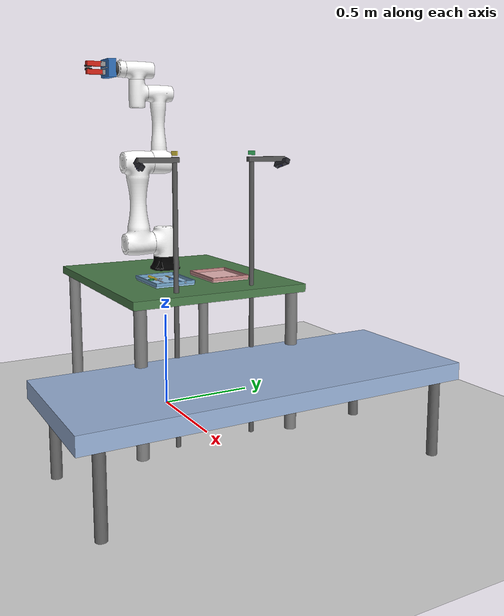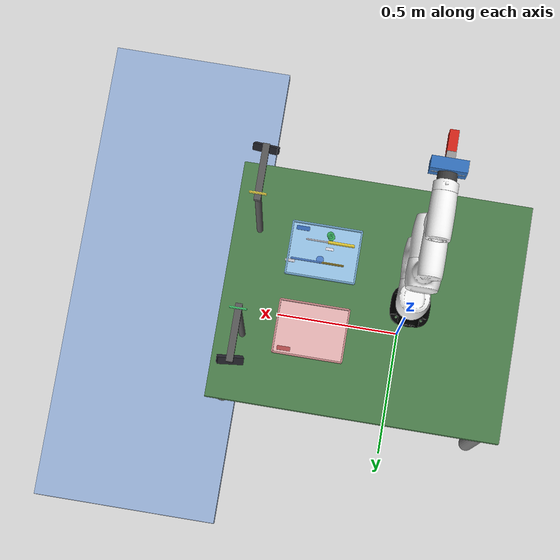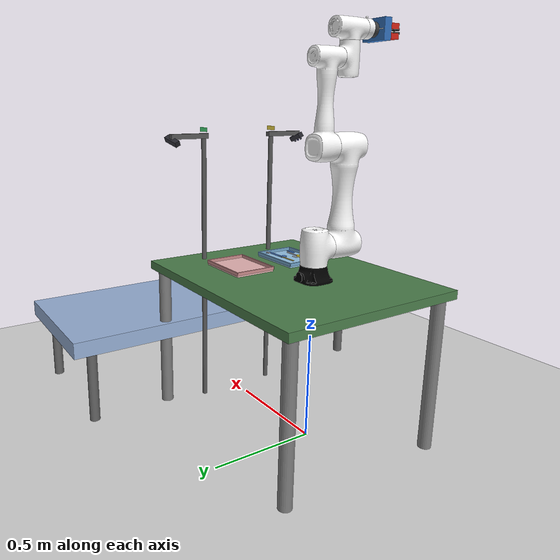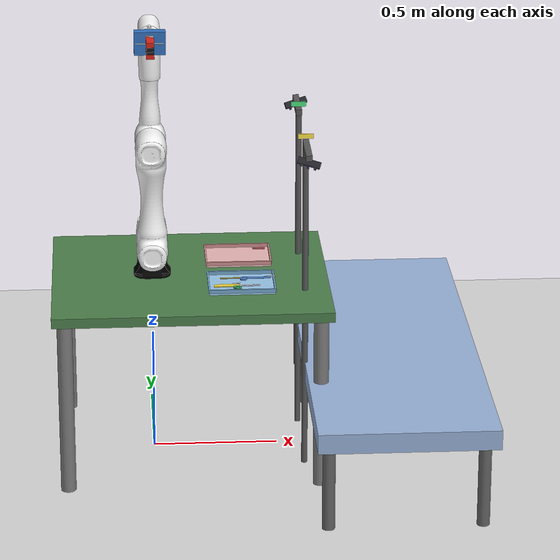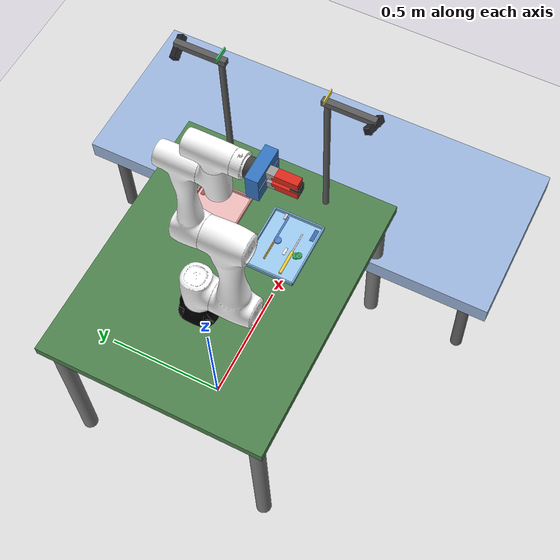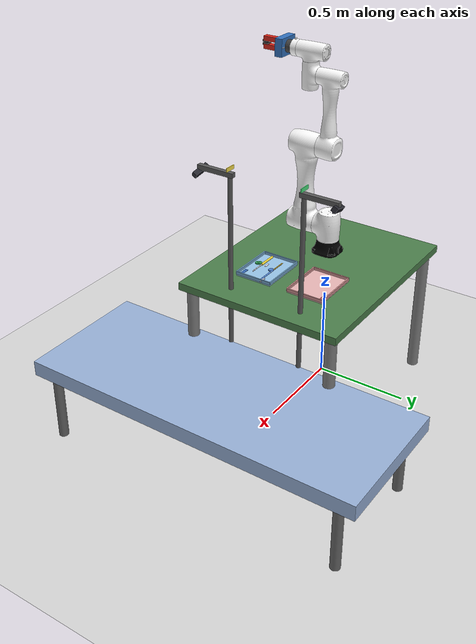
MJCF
<mujoco model="surgbot_v2">
  <compiler angle="radian" meshdir="../cr5/meshes"/>

  <option timestep="0.002" gravity="0 0 -9.81" integrator="implicit"/>

  <default>
    <joint damping="5"/>
    <geom condim="4" friction="1 0.5 0.005"/>
    <default class="visual">
      <geom contype="0" conaffinity="0" group="1"/>
    </default>
  </default>

  <asset>
    <!-- CR5 meshes -->
    <mesh name="base_link" file="base_link.stl"/>
    <mesh name="Link1" file="Link1.stl"/>
    <mesh name="Link2" file="Link2.stl"/>
    <mesh name="Link3" file="Link3.stl"/>
    <mesh name="Link4" file="Link4.stl"/>
    <mesh name="Link5" file="Link5.stl"/>
    <mesh name="Link6" file="Link6.stl"/>
    <!-- Materials -->
    <material name="steel" rgba="0.75 0.75 0.78 1"/>
    <material name="dark_metal" rgba="0.2 0.2 0.2 1"/>
    <material name="table_green" rgba="0.3 0.5 0.3 1"/>
    <material name="inst_tray_blue" rgba="0.6 0.78 0.92 1"/>
    <material name="inst_tray_edge" rgba="0.45 0.65 0.8 1"/>
    <material name="bed_tray_pink" rgba="0.92 0.72 0.72 1"/>
    <material name="bed_tray_edge" rgba="0.8 0.55 0.55 1"/>
    <material name="gripper_blue" rgba="0.2 0.45 0.75 1"/>
    <material name="rubber_black" rgba="0.1 0.1 0.1 1"/>
    <material name="camera_dark" rgba="0.15 0.15 0.18 1"/>
    <material name="lens_glass" rgba="0.05 0.05 0.1 1"/>
    <material name="bed_blue" rgba="0.6 0.7 0.85 1"/>
    <texture name="grid" type="2d" builtin="checker" width="512" height="512"
             rgb1="0.9 0.9 0.9" rgb2="0.8 0.8 0.8"/>
    <material name="floor_mat" texture="grid" texrepeat="10 10"/>
  </asset>

  <worldbody>
    <!-- Lighting -->
    <light name="top_light" pos="0 0 2.5" dir="0 0 -1" diffuse="0.8 0.8 0.8"
           specular="0.3 0.3 0.3" directional="true"/>
    <light name="front_light" pos="1 -1 2" dir="-0.5 0.5 -1" diffuse="0.4 0.4 0.4"/>

    <!-- Ground plane -->
    <geom name="floor" type="plane" size="3 3 0.01" material="floor_mat"
          conaffinity="1" condim="3"/>

    <!-- Operating table (surface at z=0.75m)         -->
    <!-- Extended forward (+X) for tray workspace     -->
    <body name="table" pos="0.15 0 0.73">
      <geom name="table_top" type="box" size="0.55 0.45 0.02"
            material="table_green" mass="25"/>
      <geom name="table_leg1" type="cylinder" size="0.03 0.355"
            pos="-0.5 -0.4 -0.375" rgba="0.5 0.5 0.5 1"/>
      <geom name="table_leg2" type="cylinder" size="0.03 0.355"
            pos="0.5 -0.4 -0.375" rgba="0.5 0.5 0.5 1"/>
      <geom name="table_leg3" type="cylinder" size="0.03 0.355"
            pos="-0.5 0.4 -0.375" rgba="0.5 0.5 0.5 1"/>
      <geom name="table_leg4" type="cylinder" size="0.03 0.355"
            pos="0.5 0.4 -0.375" rgba="0.5 0.5 0.5 1"/>
    </body>

    <!-- Hospital Bed (simplified, far +X side)       -->
    <!-- Surgeon side, beyond the trays               -->
    <body name="hospital_bed" pos="0.95 0 0.4">
      <geom name="bed_surface" type="box" size="0.35 0.9 0.04"
            material="bed_blue" mass="30"/>
      <geom name="bed_leg1" type="cylinder" size="0.025 0.18"
            pos="-0.3 -0.8 -0.22" rgba="0.4 0.4 0.4 1"/>
      <geom name="bed_leg2" type="cylinder" size="0.025 0.18"
            pos="0.3 -0.8 -0.22" rgba="0.4 0.4 0.4 1"/>
      <geom name="bed_leg3" type="cylinder" size="0.025 0.18"
            pos="-0.3 0.8 -0.22" rgba="0.4 0.4 0.4 1"/>
      <geom name="bed_leg4" type="cylinder" size="0.025 0.18"
            pos="0.3 0.8 -0.22" rgba="0.4 0.4 0.4 1"/>
    </body>

    <!-- CR5 Robot Arm (base on table center, z=0.76) -->
    <body name="cr5_base" pos="0 0 0.76">
      <geom type="mesh" rgba="0 0 0 1" mesh="base_link"/>

      <body name="Link1" pos="0 0 0.147">
        <inertial pos="-8.7268e-07 -0.0032576 -0.0076748"
                  quat="0.615786 0.347596 -0.347595 0.615761"
                  mass="1.6123"
                  diaginertia="0.00354972 0.0029122 0.00255298"/>
        <joint name="joint1" pos="0 0 0" axis="0 0 1"
               range="-3.14 3.14" damping="10"/>
        <geom type="mesh" rgba="1 1 1 1" mesh="Link1"/>

        <body name="Link2" quat="0.499998 0.5 0.5 -0.500002">
          <inertial pos="-0.21351 -1.3842e-06 0.14252"
                    quat="8.38738e-05 0.707093 5.56955e-05 0.707121"
                    mass="5.5186"
                    diaginertia="0.028294 0.027553 0.0085919"/>
          <joint name="joint2" pos="0 0 0" axis="0 0 1"
                 range="-3.14 3.14" damping="10"/>
          <geom type="mesh" rgba="1 1 1 1" mesh="Link2"/>

          <body name="Link3" pos="-0.427 0 0">
            <inertial pos="-0.15231 -1.4079e-07 0.022693"
                      quat="0 0.714013 0 0.700132"
                      mass="2.8536"
                      diaginertia="0.00955763 0.0092967 0.00325837"/>
            <joint name="joint3" pos="0 0 0" axis="0 0 1"
                   range="-2.86 2.86" damping="8"/>
            <geom type="mesh" rgba="1 1 1 1" mesh="Link3"/>

            <body name="Link4" pos="-0.357 0 0.141"
                  quat="0.707105 0 0 -0.707108">
              <inertial pos="-3.2386e-07 -0.002077 -0.0015548"
                        quat="0.653428 0.270173 -0.270153 0.653495"
                        mass="0.67058"
                        diaginertia="0.000764755 0.00066939 0.000543135"/>
              <joint name="joint4" pos="0 0 0" axis="0 0 1"
                     range="-3.14 3.14" damping="5"/>
              <geom type="mesh" rgba="1 1 1 1" mesh="Link4"/>

              <body name="Link5" pos="0 -0.116 0"
                    quat="0.707105 0.707108 0 0">
                <inertial pos="-3.7738e-07 -0.0045777 -0.0012971"
                          quat="0.27195 0.652753 -0.652695 0.271929"
                          mass="0.7269"
                          diaginertia="0.000832194 0.00073069 0.000593666"/>
                <joint name="joint5" pos="0 0 0" axis="0 0 1"
                       range="-3.14 3.14" damping="5"/>
                <geom type="mesh" rgba="1 1 1 1" mesh="Link5"/>

                <body name="Link6" pos="0 0.105 0"
                      quat="0.707105 -0.707108 0 0">
                  <inertial pos="5.0777e-11 9.3774e-05 -0.019285"
                            quat="-0.000970713 0.707106 -0.000970713 0.707106"
                            mass="0.15789"
                            diaginertia="0.00012951 7.91676e-05 7.8045e-05"/>
                  <joint name="joint6" pos="0 0 0" axis="0 0 1"
                         range="-6.28 6.28" damping="3"/>
                  <geom type="mesh" rgba="1 1 1 1" mesh="Link6"/>
                  <site name="ee_site" pos="0 0 0" size="0.01" rgba="1 0 0 0.5"/>

                  <!-- ======== DH-3 Gripper (mounted on Link6) ======== -->
                  <geom name="gripper_flange" type="cylinder" size="0.032 0.015"
                        pos="0 0 0.015" rgba="0.25 0.25 0.25 1"/>

                  <body name="gripper_base" pos="0 0 0.045">
                    <geom name="gripper_housing" type="box" size="0.06 0.045 0.02"
                          mass="0.3" material="gripper_blue"/>
                    <geom name="gripper_stripe" type="box" size="0.055 0.002 0.021"
                          pos="0 0 0" rgba="0.9 0.9 0.9 1"
                          contype="0" conaffinity="0"/>

                    <body name="gripper_left_finger" pos="0 0.02 0.02">
                      <joint name="gripper_left" type="slide" axis="0 1 0"
                             range="0 0.03" damping="2"/>
                      <geom name="gripper_left_bracket" type="box"
                            size="0.015 0.012 0.015" pos="0 0 0.01"
                            mass="0.02" rgba="0.6 0.6 0.6 1"/>
                      <geom name="gripper_left_body" type="box"
                            size="0.015 0.012 0.04" pos="0 0 0.055"
                            mass="0.05" rgba="0.85 0.15 0.1 1"/>
                      <body name="gripper_left_pad" pos="0 -0.012 0.085">
                        <geom name="left_pad" type="box"
                              size="0.014 0.005 0.015" mass="0.01"
                              material="rubber_black"
                              friction="2 0.5 0.005" condim="4"/>
                        <site name="left_pad_site" pos="0 0 0" size="0.005"/>
                      </body>
                    </body>

                    <body name="gripper_right_finger" pos="0 -0.02 0.02">
                      <joint name="gripper_right" type="slide" axis="0 -1 0"
                             range="0 0.03" damping="2"/>
                      <geom name="gripper_right_bracket" type="box"
                            size="0.015 0.012 0.015" pos="0 0 0.01"
                            mass="0.02" rgba="0.6 0.6 0.6 1"/>
                      <geom name="gripper_right_body" type="box"
                            size="0.015 0.012 0.04" pos="0 0 0.055"
                            mass="0.05" rgba="0.85 0.15 0.1 1"/>
                      <body name="gripper_right_pad" pos="0 0.012 0.085">
                        <geom name="right_pad" type="box"
                              size="0.014 0.005 0.015" mass="0.01"
                              material="rubber_black"
                              friction="2 0.5 0.005" condim="4"/>
                        <site name="right_pad_site" pos="0 0 0" size="0.005"/>
                      </body>
                    </body>

                    <site name="gripper_tcp" pos="0 0 0.1"
                          size="0.002" rgba="1 1 0 0.3"/>
                  </body>
                  <!-- ======== End Gripper ======== -->

                </body>
              </body>
            </body>
          </body>
        </body>
      </body>
    </body>
    <!-- End CR5 Robot Arm -->

    <!-- Camera 1: Watches Instrument Tray (front-left)-->
    <!-- Elevated stand behind inst tray, angled down  -->
    <body name="camera_stand_1" pos="0.6 -0.2 0">
      <geom name="cam1_pole" type="cylinder" size="0.012 0.68"
            pos="0 0 0.68" rgba="0.35 0.35 0.35 1"/>
      <geom name="cam1_bracket" type="box" size="0.012 0.1 0.012"
            pos="0 -0.08 1.36" rgba="0.35 0.35 0.35 1"/>
      <body name="camera_head_1" pos="0 -0.17 1.34" euler="1.1 0 -0.3">
        <geom name="cam1_housing" type="box" size="0.045 0.0125 0.0125"
              material="camera_dark"/>
        <geom name="cam1_lens_L" type="cylinder" size="0.005 0.004"
              pos="-0.028 -0.017 0" euler="1.5708 0 0"
              material="lens_glass" contype="0" conaffinity="0"/>
        <geom name="cam1_lens_R" type="cylinder" size="0.005 0.004"
              pos="0.028 -0.017 0" euler="1.5708 0 0"
              material="lens_glass" contype="0" conaffinity="0"/>
        <geom name="cam1_lens_C" type="cylinder" size="0.004 0.004"
              pos="0 -0.017 0" euler="1.5708 0 0"
              rgba="0.1 0.1 0.3 1" contype="0" conaffinity="0"/>
        <site name="camera1_site" pos="0 -0.02 0" size="0.003"/>
      </body>
      <geom name="cam1_label" type="box" size="0.03 0.002 0.01"
            pos="0 0 1.39" rgba="1 0.9 0.3 1"
            contype="0" conaffinity="0"/>
    </body>

    <!-- Camera 2: Watches Bed-end Tray (front-right) -->
    <!-- Elevated stand behind bed tray, angled down  -->
    <body name="camera_stand_2" pos="0.6 0.2 0">
      <geom name="cam2_pole" type="cylinder" size="0.012 0.68"
            pos="0 0 0.68" rgba="0.35 0.35 0.35 1"/>
      <geom name="cam2_bracket" type="box" size="0.012 0.1 0.012"
            pos="0 0.08 1.36" rgba="0.35 0.35 0.35 1"/>
      <body name="camera_head_2" pos="0 0.17 1.34" euler="1.1 0 0.3">
        <geom name="cam2_housing" type="box" size="0.045 0.0125 0.0125"
              material="camera_dark"/>
        <geom name="cam2_lens_L" type="cylinder" size="0.005 0.004"
              pos="-0.028 -0.017 0" euler="1.5708 0 0"
              material="lens_glass" contype="0" conaffinity="0"/>
        <geom name="cam2_lens_R" type="cylinder" size="0.005 0.004"
              pos="0.028 -0.017 0" euler="1.5708 0 0"
              material="lens_glass" contype="0" conaffinity="0"/>
        <geom name="cam2_lens_C" type="cylinder" size="0.004 0.004"
              pos="0 -0.017 0" euler="1.5708 0 0"
              rgba="0.1 0.1 0.3 1" contype="0" conaffinity="0"/>
        <site name="camera2_site" pos="0 -0.02 0" size="0.003"/>
      </body>
      <geom name="cam2_label" type="box" size="0.03 0.002 0.01"
            pos="0 0 1.39" rgba="0.3 0.9 0.5 1"
            contype="0" conaffinity="0"/>
    </body>

    <!-- Instrument Tray (器械托盘, front-left)       -->
    <!-- +X,-Y: in front of arm, left side            -->
    <!-- On table surface, z=0.758                    -->
    <body name="instrument_tray" pos="0.35 -0.15 0.758">
      <geom name="inst_tray_surface" type="box" size="0.13 0.1 0.004"
            mass="0.3" material="inst_tray_blue" friction="0.8 0.3 0.001"/>
      <geom name="inst_tray_front" type="box" size="0.13 0.003 0.0075"
            pos="0 -0.1 0.012" material="inst_tray_edge"/>
      <geom name="inst_tray_back" type="box" size="0.13 0.003 0.0075"
            pos="0 0.1 0.012" material="inst_tray_edge"/>
      <geom name="inst_tray_left" type="box" size="0.003 0.1 0.0075"
            pos="-0.13 0 0.012" material="inst_tray_edge"/>
      <geom name="inst_tray_right" type="box" size="0.003 0.1 0.0075"
            pos="0.13 0 0.012" material="inst_tray_edge"/>
      <geom name="inst_tray_label" type="box" size="0.025 0.008 0.001"
            pos="0.09 -0.08 0.005" rgba="0.2 0.4 0.7 1"
            contype="0" conaffinity="0"/>
    </body>

    <!-- Bed-end Tray (床尾托盘, front-right)         -->
    <!-- +X,+Y: in front of arm, right side           -->
    <!-- On table surface, z=0.758                    -->
    <body name="bed_tray" pos="0.35 0.15 0.758">
      <geom name="bed_tray_surface" type="box" size="0.13 0.1 0.004"
            mass="0.3" material="bed_tray_pink" friction="0.8 0.3 0.001"/>
      <geom name="bed_tray_front" type="box" size="0.13 0.003 0.0075"
            pos="0 -0.1 0.012" material="bed_tray_edge"/>
      <geom name="bed_tray_back" type="box" size="0.13 0.003 0.0075"
            pos="0 0.1 0.012" material="bed_tray_edge"/>
      <geom name="bed_tray_left" type="box" size="0.003 0.1 0.0075"
            pos="-0.13 0 0.012" material="bed_tray_edge"/>
      <geom name="bed_tray_right" type="box" size="0.003 0.1 0.0075"
            pos="0.13 0 0.012" material="bed_tray_edge"/>
      <geom name="bed_tray_label" type="box" size="0.025 0.008 0.001"
            pos="0.09 0.08 0.005" rgba="0.7 0.3 0.3 1"
            contype="0" conaffinity="0"/>
    </body>

    <!-- 4 Surgical Instruments on Instrument Tray    -->
    <!-- Inst tray center: (0.35, -0.15, 0.758)      -->
    <!-- z=0.77 (above tray surface)                  -->

    <!-- Instrument 0: Scalpel (刀柄) - YELLOW handle + silver blade -->
    <body name="scalpel_handle" pos="0.29 -0.19 0.77">
      <joint name="scalpel_free" type="free"/>
      <geom name="scalpel_shaft" type="cylinder" size="0.006 0.05"
            mass="0.04" rgba="0.9 0.8 0.2 1"
            euler="0 1.5708 0"/>
      <geom name="scalpel_blade" type="box" size="0.015 0.005 0.001"
            pos="0.04 0.025 0" mass="0.01" rgba="0.88 0.88 0.92 1"/>
    </body>

    <!-- Instrument 1: Tweezers (镊子) - GOLD/BRASS, twin prongs -->
    <body name="tweezers" pos="0.33 -0.11 0.77">
      <joint name="tweezers_free" type="free"/>
      <geom name="tweezers_arm1" type="capsule" size="0.002 0.06"
            pos="0 0.002 0" mass="0.015" rgba="0.8 0.7 0.3 1"
            euler="0 1.5708 0"/>
      <geom name="tweezers_arm2" type="capsule" size="0.002 0.06"
            pos="0 -0.002 0" mass="0.015" rgba="0.8 0.7 0.3 1"
            euler="0 1.5708 0"/>
    </body>

    <!-- Instrument 2: Scissors (剪刀) - silver + GREEN rings -->
    <body name="scissors" pos="0.37 -0.19 0.77">
      <joint name="scissors_free" type="free"/>
      <geom name="scissors_shaft" type="capsule" size="0.003 0.05"
            mass="0.04" rgba="0.78 0.78 0.82 1"
            euler="0 1.5708 0"/>
      <geom name="scissors_ring1" type="cylinder" size="0.013 0.003"
            pos="-0.04 -0.02 0" mass="0.01" rgba="0.2 0.65 0.35 1"/>
      <geom name="scissors_ring2" type="cylinder" size="0.013 0.003"
            pos="-0.035 -0.028 0" mass="0.01" rgba="0.2 0.65 0.35 1"/>
    </body>

    <!-- Instrument 3: Needle holder (持针钳) - BLUE handle + jaw -->
    <body name="needle_holder" pos="0.41 -0.11 0.77">
      <joint name="needle_holder_free" type="free"/>
      <geom name="needle_holder_shaft" type="capsule" size="0.004 0.055"
            mass="0.05" rgba="0.3 0.5 0.8 1"
            euler="0 1.5708 0"/>
      <geom name="needle_holder_jaw" type="box" size="0.018 0.005 0.002"
            pos="0.06 0.01 0" mass="0.01" rgba="0.78 0.78 0.82 1"/>
      <geom name="needle_holder_ring" type="cylinder" size="0.014 0.003"
            pos="-0.05 -0.01 0" mass="0.01" rgba="0.3 0.5 0.8 1"/>
    </body>
    <!-- End Instruments -->

  </worldbody>

  <!-- Actuators: 6 arm joints + 2 gripper fingers  -->
  <actuator>
    <position name="joint1_ctrl" joint="joint1" kp="200"
              ctrlrange="-3.14 3.14"/>
    <position name="joint2_ctrl" joint="joint2" kp="200"
              ctrlrange="-3.14 3.14"/>
    <position name="joint3_ctrl" joint="joint3" kp="150"
              ctrlrange="-2.86 2.86"/>
    <position name="joint4_ctrl" joint="joint4" kp="80"
              ctrlrange="-3.14 3.14"/>
    <position name="joint5_ctrl" joint="joint5" kp="80"
              ctrlrange="-3.14 3.14"/>
    <position name="joint6_ctrl" joint="joint6" kp="50"
              ctrlrange="-6.28 6.28"/>
    <position name="gripper_left_ctrl" joint="gripper_left" kp="50"
              ctrlrange="0 0.03"/>
    <position name="gripper_right_ctrl" joint="gripper_right" kp="50"
              ctrlrange="0 0.03"/>
  </actuator>

  <!-- Sensors -->
  <sensor>
    <force name="ee_force" site="ee_site"/>
    <torque name="ee_torque" site="ee_site"/>
    <touch name="left_pad_touch" site="left_pad_site"/>
    <touch name="right_pad_touch" site="right_pad_site"/>
  </sensor>

  <!-- Equality: gripper finger coupling -->
  <equality>
    <joint joint1="gripper_left" joint2="gripper_right" polycoef="0 1 0 0 0"/>
  </equality>

  <!-- Keyframes                                    -->
  <!-- J1≈-0.46 faces inst tray (front-left)        -->
  <!-- J1≈+0.46 faces bed tray (front-right)        -->
  <!-- Both trays at +X, arm swings ±27° in Y       -->
  <keyframe>
    <!-- Home / zero position -->
    <key name="home"
         qpos="0 0 0 0 0 0 0 0
               0.29 -0.19 0.77 1 0 0 0
               0.33 -0.11 0.77 1 0 0 0
               0.37 -0.19 0.77 1 0 0 0
               0.41 -0.11 0.77 1 0 0 0"
         ctrl="0 0 0 0 0 0 0.02 0.02"/>
    <!-- Reset: arm reaching toward instrument tray (front-left, J1=-27°) -->
    <key name="reset"
         qpos="-0.46 0.5691 -2.2532 0.1169 1.5708 -1.5708 0 0
               0.29 -0.19 0.77 1 0 0 0
               0.33 -0.11 0.77 1 0 0 0
               0.37 -0.19 0.77 1 0 0 0
               0.41 -0.11 0.77 1 0 0 0"
         ctrl="-0.46 0.5691 -2.2532 0.1169 1.5708 -1.5708 0.02 0.02"/>
    <!-- Target: arm reaching toward bed-end tray (front-right, J1=+27°) -->
    <key name="target"
         qpos="0.46 0.5691 -2.2532 0.1169 1.5708 -1.5708 0 0
               0.29 -0.19 0.77 1 0 0 0
               0.33 -0.11 0.77 1 0 0 0
               0.37 -0.19 0.77 1 0 0 0
               0.41 -0.11 0.77 1 0 0 0"
         ctrl="0.46 0.5691 -2.2532 0.1169 1.5708 -1.5708 0.02 0.02"/>
  </keyframe>
</mujoco>
